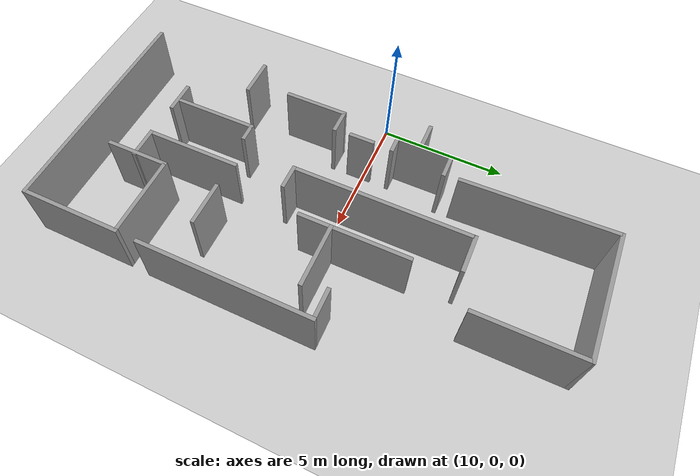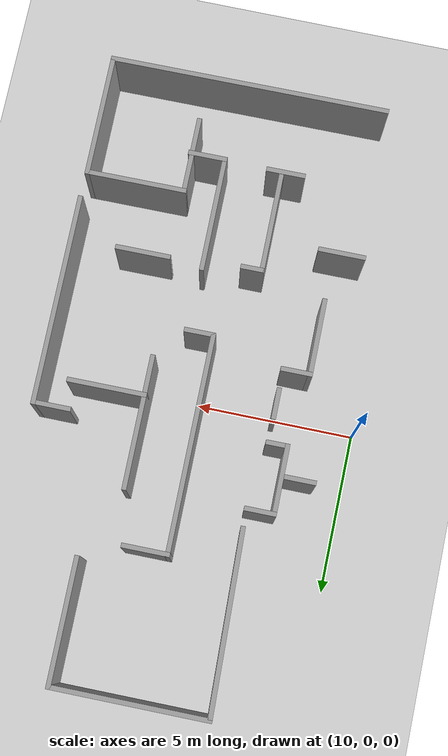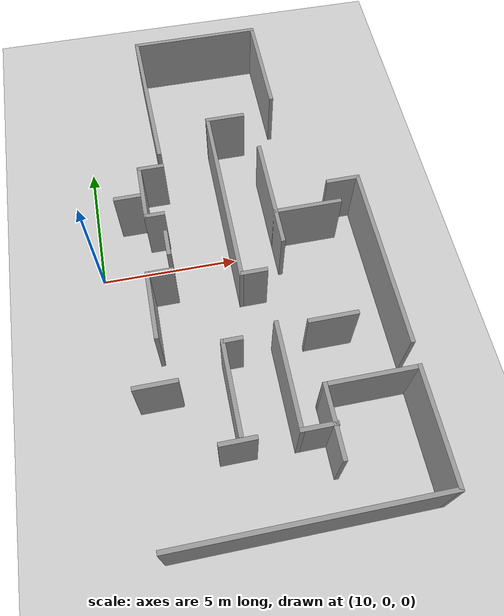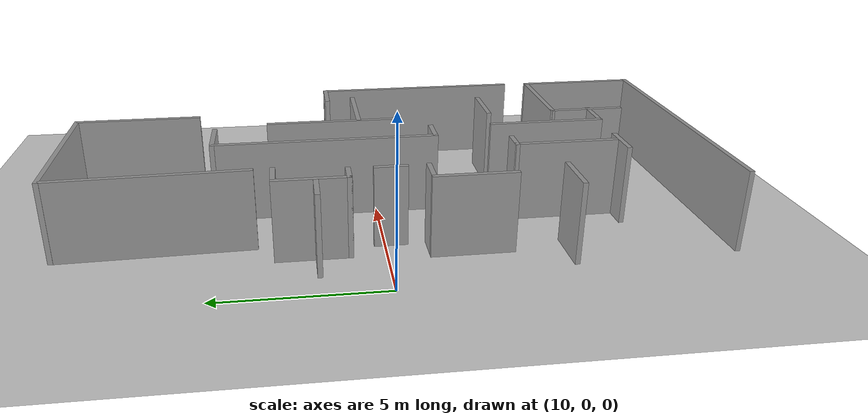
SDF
<sdf version="1.6">
 <world name="default">
  <model name="ground_plane">
   <static>1</static>
   <link name="link">
    <collision name="collision">
     <geometry><plane><normal>0 0 1</normal><size>100 100</size></plane></geometry>
     <surface><friction><ode><mu>100</mu><mu2>50</mu2></ode></friction></surface>
    </collision>
    <visual name="visual">
     <cast_shadows>0</cast_shadows>
     <geometry><plane><normal>0 0 1</normal><size>100 100</size></plane></geometry>
     <material>
      <script><uri>file://media/materials/scripts/gazebo.material</uri><name>Gazebo/Grey</name></script>
     </material>
    </visual>
   </link>
  </model>
  <model name="darpa_maze_real">
   <link name="Wall_154">
    <pose>-6.85816 3.28111 0 0 0 -3.11462</pose>
    <inertial>
     <inertia><ixx>0</ixx><ixy>0</ixy><ixz>0</ixz><iyy>0</iyy><iyz>0</iyz><izz>0</izz></inertia>
     <mass>0</mass>
    </inertial>
    <visual name="Wall_154_Visual">
     <pose>0 0 1.25 0 -0 0</pose>
     <geometry><box><size>5.75605 0.15 2.5</size></box></geometry>
     <material>
      <script><uri>file://media/materials/scripts/gazebo.material</uri><name>Gazebo/Grey</name></script>
      <ambient>1 1 1 1</ambient>
     </material>
     <meta><layer>0</layer></meta>
    </visual>
    <collision name="Wall_154_Collision">
     <pose>0 0 1.25 0 -0 0</pose>
     <geometry><box><size>5.75605 0.15 2.5</size></box></geometry>
     <surface>
      <friction>
       <ode><mu>1</mu><mu2>1</mu2><fdir1>0 0 0</fdir1><slip1>0</slip1><slip2>0</slip2></ode>
       <torsional>
        <coefficient>1</coefficient>
        <patch_radius>0</patch_radius>
        <surface_radius>0</surface_radius>
        <use_patch_radius>1</use_patch_radius>
        <ode><slip>0</slip></ode>
       </torsional>
      </friction>
      <bounce><restitution_coefficient>0</restitution_coefficient><threshold>1e+06</threshold></bounce>
      <contact>
       <collide_without_contact>0</collide_without_contact>
       <collide_without_contact_bitmask>1</collide_without_contact_bitmask>
       <collide_bitmask>1</collide_bitmask>
       <ode>
        <soft_cfm>0</soft_cfm>
        <soft_erp>0.2</soft_erp>
        <kp>1e+13</kp>
        <kd>1</kd>
        <max_vel>0.01</max_vel>
        <min_depth>0</min_depth>
       </ode>
       <bullet>
        <split_impulse>1</split_impulse>
        <split_impulse_penetration_threshold>-0.01</split_impulse_penetration_threshold>
        <soft_cfm>0</soft_cfm>
        <soft_erp>0.2</soft_erp>
        <kp>1e+13</kp>
        <kd>1</kd>
       </bullet>
      </contact>
     </surface>
    </collision>
   </link>
   <link name="Wall_160">
    <pose>4.9219 2.01613 0 0 -0 1.5708</pose>
    <visual name="Wall_160_Visual">
     <pose>0 0 1.25 0 -0 0</pose>
     <geometry><box><size>1.5 0.15 2.5</size></box></geometry>
     <material>
      <script><uri>file://media/materials/scripts/gazebo.material</uri><name>Gazebo/Grey</name></script>
      <ambient>1 1 1 1</ambient>
     </material>
     <meta><layer>0</layer></meta>
    </visual>
    <collision name="Wall_160_Collision">
     <pose>0 0 1.25 0 -0 0</pose>
     <geometry><box><size>1.5 0.15 2.5</size></box></geometry>
     <surface>
      <friction>
       <ode><mu>1</mu><mu2>1</mu2><fdir1>0 0 0</fdir1><slip1>0</slip1><slip2>0</slip2></ode>
       <torsional>
        <coefficient>1</coefficient>
        <patch_radius>0</patch_radius>
        <surface_radius>0</surface_radius>
        <use_patch_radius>1</use_patch_radius>
        <ode><slip>0</slip></ode>
       </torsional>
      </friction>
      <bounce><restitution_coefficient>0</restitution_coefficient><threshold>1e+06</threshold></bounce>
      <contact>
       <collide_without_contact>0</collide_without_contact>
       <collide_without_contact_bitmask>1</collide_without_contact_bitmask>
       <collide_bitmask>1</collide_bitmask>
       <ode>
        <soft_cfm>0</soft_cfm>
        <soft_erp>0.2</soft_erp>
        <kp>1e+13</kp>
        <kd>1</kd>
        <max_vel>0.01</max_vel>
        <min_depth>0</min_depth>
       </ode>
       <bullet>
        <split_impulse>1</split_impulse>
        <split_impulse_penetration_threshold>-0.01</split_impulse_penetration_threshold>
        <soft_cfm>0</soft_cfm>
        <soft_erp>0.2</soft_erp>
        <kp>1e+13</kp>
        <kd>1</kd>
       </bullet>
      </contact>
     </surface>
    </collision>
   </link>
   <link name="Wall_162">
    <pose>2.14718 2.26404 0 0 -0 3.14159</pose>
    <visual name="Wall_162_Visual">
     <pose>0 0 1.25 0 -0 0</pose>
     <geometry><box><size>2.5 0.15 2.5</size></box></geometry>
     <material>
      <script><uri>file://media/materials/scripts/gazebo.material</uri><name>Gazebo/Grey</name></script>
      <ambient>1 1 1 1</ambient>
     </material>
     <meta><layer>0</layer></meta>
    </visual>
    <collision name="Wall_162_Collision">
     <pose>0 0 1.25 0 -0 0</pose>
     <geometry><box><size>2.5 0.15 2.5</size></box></geometry>
     <surface>
      <friction>
       <ode><mu>1</mu><mu2>1</mu2><fdir1>0 0 0</fdir1><slip1>0</slip1><slip2>0</slip2></ode>
       <torsional>
        <coefficient>1</coefficient>
        <patch_radius>0</patch_radius>
        <surface_radius>0</surface_radius>
        <use_patch_radius>1</use_patch_radius>
        <ode><slip>0</slip></ode>
       </torsional>
      </friction>
      <bounce><restitution_coefficient>0</restitution_coefficient><threshold>1e+06</threshold></bounce>
      <contact>
       <collide_without_contact>0</collide_without_contact>
       <collide_without_contact_bitmask>1</collide_without_contact_bitmask>
       <collide_bitmask>1</collide_bitmask>
       <ode>
        <soft_cfm>0</soft_cfm>
        <soft_erp>0.2</soft_erp>
        <kp>1e+13</kp>
        <kd>1</kd>
        <max_vel>0.01</max_vel>
        <min_depth>0</min_depth>
       </ode>
       <bullet>
        <split_impulse>1</split_impulse>
        <split_impulse_penetration_threshold>-0.01</split_impulse_penetration_threshold>
        <soft_cfm>0</soft_cfm>
        <soft_erp>0.2</soft_erp>
        <kp>1e+13</kp>
        <kd>1</kd>
       </bullet>
      </contact>
     </surface>
    </collision>
   </link>
   <link name="Wall_163">
    <pose>0.972182 2.68905 0 0 -0 1.5708</pose>
    <visual name="Wall_163_Visual">
     <pose>0 0 1.25 0 -0 0</pose>
     <geometry><box><size>1 0.15 2.5</size></box></geometry>
     <material>
      <script><uri>file://media/materials/scripts/gazebo.material</uri><name>Gazebo/Grey</name></script>
      <ambient>1 1 1 1</ambient>
     </material>
     <meta><layer>0</layer></meta>
    </visual>
    <collision name="Wall_163_Collision">
     <pose>0 0 1.25 0 -0 0</pose>
     <geometry><box><size>1 0.15 2.5</size></box></geometry>
     <surface>
      <friction>
       <ode><mu>1</mu><mu2>1</mu2><fdir1>0 0 0</fdir1><slip1>0</slip1><slip2>0</slip2></ode>
       <torsional>
        <coefficient>1</coefficient>
        <patch_radius>0</patch_radius>
        <surface_radius>0</surface_radius>
        <use_patch_radius>1</use_patch_radius>
        <ode><slip>0</slip></ode>
       </torsional>
      </friction>
      <bounce><restitution_coefficient>0</restitution_coefficient><threshold>1e+06</threshold></bounce>
      <contact>
       <collide_without_contact>0</collide_without_contact>
       <collide_without_contact_bitmask>1</collide_without_contact_bitmask>
       <collide_bitmask>1</collide_bitmask>
       <ode>
        <soft_cfm>0</soft_cfm>
        <soft_erp>0.2</soft_erp>
        <kp>1e+13</kp>
        <kd>1</kd>
        <max_vel>0.01</max_vel>
        <min_depth>0</min_depth>
       </ode>
       <bullet>
        <split_impulse>1</split_impulse>
        <split_impulse_penetration_threshold>-0.01</split_impulse_penetration_threshold>
        <soft_cfm>0</soft_cfm>
        <soft_erp>0.2</soft_erp>
        <kp>1e+13</kp>
        <kd>1</kd>
       </bullet>
      </contact>
     </surface>
    </collision>
   </link>
   <link name="Wall_165">
    <pose>-3.44589 2.94655 0 0 0 -1.5708</pose>
    <visual name="Wall_165_Visual">
     <pose>0 0 1.25 0 -0 0</pose>
     <geometry><box><size>1 0.15 2.5</size></box></geometry>
     <material>
      <script><uri>file://media/materials/scripts/gazebo.material</uri><name>Gazebo/Grey</name></script>
      <ambient>1 1 1 1</ambient>
     </material>
     <meta><layer>0</layer></meta>
    </visual>
    <collision name="Wall_165_Collision">
     <pose>0 0 1.25 0 -0 0</pose>
     <geometry><box><size>1 0.15 2.5</size></box></geometry>
     <surface>
      <friction>
       <ode><mu>1</mu><mu2>1</mu2><fdir1>0 0 0</fdir1><slip1>0</slip1><slip2>0</slip2></ode>
       <torsional>
        <coefficient>1</coefficient>
        <patch_radius>0</patch_radius>
        <surface_radius>0</surface_radius>
        <use_patch_radius>1</use_patch_radius>
        <ode><slip>0</slip></ode>
       </torsional>
      </friction>
      <bounce><restitution_coefficient>0</restitution_coefficient><threshold>1e+06</threshold></bounce>
      <contact>
       <collide_without_contact>0</collide_without_contact>
       <collide_without_contact_bitmask>1</collide_without_contact_bitmask>
       <collide_bitmask>1</collide_bitmask>
       <ode>
        <soft_cfm>0</soft_cfm>
        <soft_erp>0.2</soft_erp>
        <kp>1e+13</kp>
        <kd>1</kd>
        <max_vel>0.01</max_vel>
        <min_depth>0</min_depth>
       </ode>
       <bullet>
        <split_impulse>1</split_impulse>
        <split_impulse_penetration_threshold>-0.01</split_impulse_penetration_threshold>
        <soft_cfm>0</soft_cfm>
        <soft_erp>0.2</soft_erp>
        <kp>1e+13</kp>
        <kd>1</kd>
       </bullet>
      </contact>
     </surface>
    </collision>
   </link>
   <link name="Wall_166">
    <pose>-2.39589 2.52155 0 0 -0 0</pose>
    <visual name="Wall_166_Visual">
     <pose>0 0 1.25 0 -0 0</pose>
     <geometry><box><size>2.25 0.15 2.5</size></box></geometry>
     <material>
      <script><uri>file://media/materials/scripts/gazebo.material</uri><name>Gazebo/Grey</name></script>
      <ambient>1 1 1 1</ambient>
     </material>
     <meta><layer>0</layer></meta>
    </visual>
    <collision name="Wall_166_Collision">
     <pose>0 0 1.25 0 -0 0</pose>
     <geometry><box><size>2.25 0.15 2.5</size></box></geometry>
     <surface>
      <friction>
       <ode><mu>1</mu><mu2>1</mu2><fdir1>0 0 0</fdir1><slip1>0</slip1><slip2>0</slip2></ode>
       <torsional>
        <coefficient>1</coefficient>
        <patch_radius>0</patch_radius>
        <surface_radius>0</surface_radius>
        <use_patch_radius>1</use_patch_radius>
        <ode><slip>0</slip></ode>
       </torsional>
      </friction>
      <bounce><restitution_coefficient>0</restitution_coefficient><threshold>1e+06</threshold></bounce>
      <contact>
       <collide_without_contact>0</collide_without_contact>
       <collide_without_contact_bitmask>1</collide_without_contact_bitmask>
       <collide_bitmask>1</collide_bitmask>
       <ode>
        <soft_cfm>0</soft_cfm>
        <soft_erp>0.2</soft_erp>
        <kp>1e+13</kp>
        <kd>1</kd>
        <max_vel>0.01</max_vel>
        <min_depth>0</min_depth>
       </ode>
       <bullet>
        <split_impulse>1</split_impulse>
        <split_impulse_penetration_threshold>-0.01</split_impulse_penetration_threshold>
        <soft_cfm>0</soft_cfm>
        <soft_erp>0.2</soft_erp>
        <kp>1e+13</kp>
        <kd>1</kd>
       </bullet>
      </contact>
     </surface>
    </collision>
   </link>
   <link name="Wall_167">
    <pose>-1.34589 2.82155 0 0 -0 1.5708</pose>
    <visual name="Wall_167_Visual">
     <pose>0 0 1.25 0 -0 0</pose>
     <geometry><box><size>0.75 0.15 2.5</size></box></geometry>
     <material>
      <script><uri>file://media/materials/scripts/gazebo.material</uri><name>Gazebo/Grey</name></script>
      <ambient>1 1 1 1</ambient>
     </material>
     <meta><layer>0</layer></meta>
    </visual>
    <collision name="Wall_167_Collision">
     <pose>0 0 1.25 0 -0 0</pose>
     <geometry><box><size>0.75 0.15 2.5</size></box></geometry>
     <surface>
      <friction>
       <ode><mu>1</mu><mu2>1</mu2><fdir1>0 0 0</fdir1><slip1>0</slip1><slip2>0</slip2></ode>
       <torsional>
        <coefficient>1</coefficient>
        <patch_radius>0</patch_radius>
        <surface_radius>0</surface_radius>
        <use_patch_radius>1</use_patch_radius>
        <ode><slip>0</slip></ode>
       </torsional>
      </friction>
      <bounce><restitution_coefficient>0</restitution_coefficient><threshold>1e+06</threshold></bounce>
      <contact>
       <collide_without_contact>0</collide_without_contact>
       <collide_without_contact_bitmask>1</collide_without_contact_bitmask>
       <collide_bitmask>1</collide_bitmask>
       <ode>
        <soft_cfm>0</soft_cfm>
        <soft_erp>0.2</soft_erp>
        <kp>1e+13</kp>
        <kd>1</kd>
        <max_vel>0.01</max_vel>
        <min_depth>0</min_depth>
       </ode>
       <bullet>
        <split_impulse>1</split_impulse>
        <split_impulse_penetration_threshold>-0.01</split_impulse_penetration_threshold>
        <soft_cfm>0</soft_cfm>
        <soft_erp>0.2</soft_erp>
        <kp>1e+13</kp>
        <kd>1</kd>
       </bullet>
      </contact>
     </surface>
    </collision>
   </link>
   <link name="Wall_169">
    <pose>-2.27686 1.95071 0 0 -0 1.5708</pose>
    <visual name="Wall_169_Visual">
     <pose>0 0 1.25 0 -0 0</pose>
     <geometry><box><size>1 0.15 2.5</size></box></geometry>
     <material>
      <script><uri>file://media/materials/scripts/gazebo.material</uri><name>Gazebo/Grey</name></script>
      <ambient>1 1 1 1</ambient>
     </material>
     <meta><layer>0</layer></meta>
    </visual>
    <collision name="Wall_169_Collision">
     <pose>0 0 1.25 0 -0 0</pose>
     <geometry><box><size>1 0.15 2.5</size></box></geometry>
     <surface>
      <friction>
       <ode><mu>1</mu><mu2>1</mu2><fdir1>0 0 0</fdir1><slip1>0</slip1><slip2>0</slip2></ode>
       <torsional>
        <coefficient>1</coefficient>
        <patch_radius>0</patch_radius>
        <surface_radius>0</surface_radius>
        <use_patch_radius>1</use_patch_radius>
        <ode><slip>0</slip></ode>
       </torsional>
      </friction>
      <bounce><restitution_coefficient>0</restitution_coefficient><threshold>1e+06</threshold></bounce>
      <contact>
       <collide_without_contact>0</collide_without_contact>
       <collide_without_contact_bitmask>1</collide_without_contact_bitmask>
       <collide_bitmask>1</collide_bitmask>
       <ode>
        <soft_cfm>0</soft_cfm>
        <soft_erp>0.2</soft_erp>
        <kp>1e+13</kp>
        <kd>1</kd>
        <max_vel>0.01</max_vel>
        <min_depth>0</min_depth>
       </ode>
       <bullet>
        <split_impulse>1</split_impulse>
        <split_impulse_penetration_threshold>-0.01</split_impulse_penetration_threshold>
        <soft_cfm>0</soft_cfm>
        <soft_erp>0.2</soft_erp>
        <kp>1e+13</kp>
        <kd>1</kd>
       </bullet>
      </contact>
     </surface>
    </collision>
   </link>
   <link name="Wall_171">
    <pose>3.8951 4.65021 0 0 0 -1.5708</pose>
    <visual name="Wall_171_Visual">
     <pose>0 0 1.25 0 -0 0</pose>
     <geometry><box><size>0.75 0.15 2.5</size></box></geometry>
     <material>
      <script><uri>file://media/materials/scripts/gazebo.material</uri><name>Gazebo/Grey</name></script>
      <ambient>1 1 1 1</ambient>
     </material>
     <meta><layer>0</layer></meta>
    </visual>
    <collision name="Wall_171_Collision">
     <pose>0 0 1.25 0 -0 0</pose>
     <geometry><box><size>0.75 0.15 2.5</size></box></geometry>
     <surface>
      <friction>
       <ode><mu>1</mu><mu2>1</mu2><fdir1>0 0 0</fdir1><slip1>0</slip1><slip2>0</slip2></ode>
       <torsional>
        <coefficient>1</coefficient>
        <patch_radius>0</patch_radius>
        <surface_radius>0</surface_radius>
        <use_patch_radius>1</use_patch_radius>
        <ode><slip>0</slip></ode>
       </torsional>
      </friction>
      <bounce><restitution_coefficient>0</restitution_coefficient><threshold>1e+06</threshold></bounce>
      <contact>
       <collide_without_contact>0</collide_without_contact>
       <collide_without_contact_bitmask>1</collide_without_contact_bitmask>
       <collide_bitmask>1</collide_bitmask>
       <ode>
        <soft_cfm>0</soft_cfm>
        <soft_erp>0.2</soft_erp>
        <kp>1e+13</kp>
        <kd>1</kd>
        <max_vel>0.01</max_vel>
        <min_depth>0</min_depth>
       </ode>
       <bullet>
        <split_impulse>1</split_impulse>
        <split_impulse_penetration_threshold>-0.01</split_impulse_penetration_threshold>
        <soft_cfm>0</soft_cfm>
        <soft_erp>0.2</soft_erp>
        <kp>1e+13</kp>
        <kd>1</kd>
       </bullet>
      </contact>
     </surface>
    </collision>
   </link>
   <link name="Wall_174">
    <pose>7.14993 4.22658 0 0 -0 1.5708</pose>
    <visual name="Wall_174_Visual">
     <pose>0 0 1.25 0 -0 0</pose>
     <geometry><box><size>1.25 0.15 2.5</size></box></geometry>
     <material>
      <script><uri>file://media/materials/scripts/gazebo.material</uri><name>Gazebo/Grey</name></script>
      <ambient>1 1 1 1</ambient>
     </material>
     <meta><layer>0</layer></meta>
    </visual>
    <collision name="Wall_174_Collision">
     <pose>0 0 1.25 0 -0 0</pose>
     <geometry><box><size>1.25 0.15 2.5</size></box></geometry>
     <surface>
      <friction>
       <ode><mu>1</mu><mu2>1</mu2><fdir1>0 0 0</fdir1><slip1>0</slip1><slip2>0</slip2></ode>
       <torsional>
        <coefficient>1</coefficient>
        <patch_radius>0</patch_radius>
        <surface_radius>0</surface_radius>
        <use_patch_radius>1</use_patch_radius>
        <ode><slip>0</slip></ode>
       </torsional>
      </friction>
      <bounce><restitution_coefficient>0</restitution_coefficient><threshold>1e+06</threshold></bounce>
      <contact>
       <collide_without_contact>0</collide_without_contact>
       <collide_without_contact_bitmask>1</collide_without_contact_bitmask>
       <collide_bitmask>1</collide_bitmask>
       <ode>
        <soft_cfm>0</soft_cfm>
        <soft_erp>0.2</soft_erp>
        <kp>1e+13</kp>
        <kd>1</kd>
        <max_vel>0.01</max_vel>
        <min_depth>0</min_depth>
       </ode>
       <bullet>
        <split_impulse>1</split_impulse>
        <split_impulse_penetration_threshold>-0.01</split_impulse_penetration_threshold>
        <soft_cfm>0</soft_cfm>
        <soft_erp>0.2</soft_erp>
        <kp>1e+13</kp>
        <kd>1</kd>
       </bullet>
      </contact>
     </surface>
    </collision>
   </link>
   <link name="Wall_176">
    <pose>5.4451 4.35021 0 0 -0 0</pose>
    <visual name="Wall_176_Visual">
     <pose>0 0 1.25 0 -0 0</pose>
     <geometry><box><size>3.25 0.15 2.5</size></box></geometry>
     <material>
      <script><uri>file://media/materials/scripts/gazebo.material</uri><name>Gazebo/Grey</name></script>
      <ambient>1 1 1 1</ambient>
     </material>
     <meta><layer>0</layer></meta>
    </visual>
    <collision name="Wall_176_Collision">
     <pose>0 0 1.25 0 -0 0</pose>
     <geometry><box><size>3.25 0.15 2.5</size></box></geometry>
     <surface>
      <friction>
       <ode><mu>1</mu><mu2>1</mu2><fdir1>0 0 0</fdir1><slip1>0</slip1><slip2>0</slip2></ode>
       <torsional>
        <coefficient>1</coefficient>
        <patch_radius>0</patch_radius>
        <surface_radius>0</surface_radius>
        <use_patch_radius>1</use_patch_radius>
        <ode><slip>0</slip></ode>
       </torsional>
      </friction>
      <bounce><restitution_coefficient>0</restitution_coefficient><threshold>1e+06</threshold></bounce>
      <contact>
       <collide_without_contact>0</collide_without_contact>
       <collide_without_contact_bitmask>1</collide_without_contact_bitmask>
       <collide_bitmask>1</collide_bitmask>
       <ode>
        <soft_cfm>0</soft_cfm>
        <soft_erp>0.2</soft_erp>
        <kp>1e+13</kp>
        <kd>1</kd>
        <max_vel>0.01</max_vel>
        <min_depth>0</min_depth>
       </ode>
       <bullet>
        <split_impulse>1</split_impulse>
        <split_impulse_penetration_threshold>-0.01</split_impulse_penetration_threshold>
        <soft_cfm>0</soft_cfm>
        <soft_erp>0.2</soft_erp>
        <kp>1e+13</kp>
        <kd>1</kd>
       </bullet>
      </contact>
     </surface>
    </collision>
   </link>
   <link name="Wall_178">
    <pose>-0.12433 3.10656 0 0 -0 4e-06</pose>
    <visual name="Wall_178_Visual">
     <pose>0 0 1.25 0 -0 0</pose>
     <geometry><box><size>1 0.15 2.5</size></box></geometry>
     <material>
      <script><uri>file://media/materials/scripts/gazebo.material</uri><name>Gazebo/Grey</name></script>
      <ambient>1 1 1 1</ambient>
     </material>
     <meta><layer>0</layer></meta>
    </visual>
    <collision name="Wall_178_Collision">
     <pose>0 0 1.25 0 -0 0</pose>
     <geometry><box><size>1 0.15 2.5</size></box></geometry>
     <surface>
      <friction>
       <ode><mu>1</mu><mu2>1</mu2><fdir1>0 0 0</fdir1><slip1>0</slip1><slip2>0</slip2></ode>
       <torsional>
        <coefficient>1</coefficient>
        <patch_radius>0</patch_radius>
        <surface_radius>0</surface_radius>
        <use_patch_radius>1</use_patch_radius>
        <ode><slip>0</slip></ode>
       </torsional>
      </friction>
      <bounce><restitution_coefficient>0</restitution_coefficient><threshold>1e+06</threshold></bounce>
      <contact>
       <collide_without_contact>0</collide_without_contact>
       <collide_without_contact_bitmask>1</collide_without_contact_bitmask>
       <collide_bitmask>1</collide_bitmask>
       <ode>
        <soft_cfm>0</soft_cfm>
        <soft_erp>0.2</soft_erp>
        <kp>1e+13</kp>
        <kd>1</kd>
        <max_vel>0.01</max_vel>
        <min_depth>0</min_depth>
       </ode>
       <bullet>
        <split_impulse>1</split_impulse>
        <split_impulse_penetration_threshold>-0.01</split_impulse_penetration_threshold>
        <soft_cfm>0</soft_cfm>
        <soft_erp>0.2</soft_erp>
        <kp>1e+13</kp>
        <kd>1</kd>
       </bullet>
      </contact>
     </surface>
    </collision>
   </link>
   <link name="Wall_188">
    <pose>9.78261 5.91805 0 0 -0 1.5708</pose>
    <visual name="Wall_188_Visual">
     <pose>0 0 1.25 0 -0 0</pose>
     <geometry><box><size>9 0.15 2.5</size></box></geometry>
     <material>
      <script><uri>file://media/materials/scripts/gazebo.material</uri><name>Gazebo/Grey</name></script>
      <ambient>1 1 1 1</ambient>
     </material>
     <meta><layer>0</layer></meta>
    </visual>
    <collision name="Wall_188_Collision">
     <pose>0 0 1.25 0 -0 0</pose>
     <geometry><box><size>9 0.15 2.5</size></box></geometry>
     <surface>
      <friction>
       <ode><mu>1</mu><mu2>1</mu2><fdir1>0 0 0</fdir1><slip1>0</slip1><slip2>0</slip2></ode>
       <torsional>
        <coefficient>1</coefficient>
        <patch_radius>0</patch_radius>
        <surface_radius>0</surface_radius>
        <use_patch_radius>1</use_patch_radius>
        <ode><slip>0</slip></ode>
       </torsional>
      </friction>
      <bounce><restitution_coefficient>0</restitution_coefficient><threshold>1e+06</threshold></bounce>
      <contact>
       <collide_without_contact>0</collide_without_contact>
       <collide_without_contact_bitmask>1</collide_without_contact_bitmask>
       <collide_bitmask>1</collide_bitmask>
       <ode>
        <soft_cfm>0</soft_cfm>
        <soft_erp>0.2</soft_erp>
        <kp>1e+13</kp>
        <kd>1</kd>
        <max_vel>0.01</max_vel>
        <min_depth>0</min_depth>
       </ode>
       <bullet>
        <split_impulse>1</split_impulse>
        <split_impulse_penetration_threshold>-0.01</split_impulse_penetration_threshold>
        <soft_cfm>0</soft_cfm>
        <soft_erp>0.2</soft_erp>
        <kp>1e+13</kp>
        <kd>1</kd>
       </bullet>
      </contact>
     </surface>
    </collision>
   </link>
   <link name="Wall_189">
    <pose>7.85761 10.3431 0 0 -0 3.14159</pose>
    <visual name="Wall_189_Visual">
     <pose>0 0 1.25 0 -0 0</pose>
     <geometry><box><size>4 0.15 2.5</size></box></geometry>
     <material>
      <script><uri>file://media/materials/scripts/gazebo.material</uri><name>Gazebo/Grey</name></script>
      <ambient>1 1 1 1</ambient>
     </material>
     <meta><layer>0</layer></meta>
    </visual>
    <collision name="Wall_189_Collision">
     <pose>0 0 1.25 0 -0 0</pose>
     <geometry><box><size>4 0.15 2.5</size></box></geometry>
     <surface>
      <friction>
       <ode><mu>1</mu><mu2>1</mu2><fdir1>0 0 0</fdir1><slip1>0</slip1><slip2>0</slip2></ode>
       <torsional>
        <coefficient>1</coefficient>
        <patch_radius>0</patch_radius>
        <surface_radius>0</surface_radius>
        <use_patch_radius>1</use_patch_radius>
        <ode><slip>0</slip></ode>
       </torsional>
      </friction>
      <bounce><restitution_coefficient>0</restitution_coefficient><threshold>1e+06</threshold></bounce>
      <contact>
       <collide_without_contact>0</collide_without_contact>
       <collide_without_contact_bitmask>1</collide_without_contact_bitmask>
       <collide_bitmask>1</collide_bitmask>
       <ode>
        <soft_cfm>0</soft_cfm>
        <soft_erp>0.2</soft_erp>
        <kp>1e+13</kp>
        <kd>1</kd>
        <max_vel>0.01</max_vel>
        <min_depth>0</min_depth>
       </ode>
       <bullet>
        <split_impulse>1</split_impulse>
        <split_impulse_penetration_threshold>-0.01</split_impulse_penetration_threshold>
        <soft_cfm>0</soft_cfm>
        <soft_erp>0.2</soft_erp>
        <kp>1e+13</kp>
        <kd>1</kd>
       </bullet>
      </contact>
     </surface>
    </collision>
   </link>
   <link name="Wall_192">
    <pose>5.93261 8.79305 0 0 0 -1.5708</pose>
    <visual name="Wall_192_Visual">
     <pose>0 0 1.25 0 -0 0</pose>
     <geometry><box><size>3.25 0.15 2.5</size></box></geometry>
     <material>
      <script><uri>file://media/materials/scripts/gazebo.material</uri><name>Gazebo/Grey</name></script>
      <ambient>1 1 1 1</ambient>
     </material>
     <meta><layer>0</layer></meta>
    </visual>
    <collision name="Wall_192_Collision">
     <pose>0 0 1.25 0 -0 0</pose>
     <geometry><box><size>3.25 0.15 2.5</size></box></geometry>
     <surface>
      <friction>
       <ode><mu>1</mu><mu2>1</mu2><fdir1>0 0 0</fdir1><slip1>0</slip1><slip2>0</slip2></ode>
       <torsional>
        <coefficient>1</coefficient>
        <patch_radius>0</patch_radius>
        <surface_radius>0</surface_radius>
        <use_patch_radius>1</use_patch_radius>
        <ode><slip>0</slip></ode>
       </torsional>
      </friction>
      <bounce><restitution_coefficient>0</restitution_coefficient><threshold>1e+06</threshold></bounce>
      <contact>
       <collide_without_contact>0</collide_without_contact>
       <collide_without_contact_bitmask>1</collide_without_contact_bitmask>
       <collide_bitmask>1</collide_bitmask>
       <ode>
        <soft_cfm>0</soft_cfm>
        <soft_erp>0.2</soft_erp>
        <kp>1e+13</kp>
        <kd>1</kd>
        <max_vel>0.01</max_vel>
        <min_depth>0</min_depth>
       </ode>
       <bullet>
        <split_impulse>1</split_impulse>
        <split_impulse_penetration_threshold>-0.01</split_impulse_penetration_threshold>
        <soft_cfm>0</soft_cfm>
        <soft_erp>0.2</soft_erp>
        <kp>1e+13</kp>
        <kd>1</kd>
       </bullet>
      </contact>
     </surface>
    </collision>
   </link>
   <link name="Wall_193">
    <pose>7.10761 7.24305 0 0 -0 0</pose>
    <visual name="Wall_193_Visual">
     <pose>0 0 1.25 0 -0 0</pose>
     <geometry><box><size>2.5 0.15 2.5</size></box></geometry>
     <material>
      <script><uri>file://media/materials/scripts/gazebo.material</uri><name>Gazebo/Grey</name></script>
      <ambient>1 1 1 1</ambient>
     </material>
     <meta><layer>0</layer></meta>
    </visual>
    <collision name="Wall_193_Collision">
     <pose>0 0 1.25 0 -0 0</pose>
     <geometry><box><size>2.5 0.15 2.5</size></box></geometry>
     <surface>
      <friction>
       <ode><mu>1</mu><mu2>1</mu2><fdir1>0 0 0</fdir1><slip1>0</slip1><slip2>0</slip2></ode>
       <torsional>
        <coefficient>1</coefficient>
        <patch_radius>0</patch_radius>
        <surface_radius>0</surface_radius>
        <use_patch_radius>1</use_patch_radius>
        <ode><slip>0</slip></ode>
       </torsional>
      </friction>
      <bounce><restitution_coefficient>0</restitution_coefficient><threshold>1e+06</threshold></bounce>
      <contact>
       <collide_without_contact>0</collide_without_contact>
       <collide_without_contact_bitmask>1</collide_without_contact_bitmask>
       <collide_bitmask>1</collide_bitmask>
       <ode>
        <soft_cfm>0</soft_cfm>
        <soft_erp>0.2</soft_erp>
        <kp>1e+13</kp>
        <kd>1</kd>
        <max_vel>0.01</max_vel>
        <min_depth>0</min_depth>
       </ode>
       <bullet>
        <split_impulse>1</split_impulse>
        <split_impulse_penetration_threshold>-0.01</split_impulse_penetration_threshold>
        <soft_cfm>0</soft_cfm>
        <soft_erp>0.2</soft_erp>
        <kp>1e+13</kp>
        <kd>1</kd>
       </bullet>
      </contact>
     </surface>
    </collision>
   </link>
   <link name="Wall_195">
    <pose>7.19616 6.74098 0 0 0 -1.5708</pose>
    <visual name="Wall_195_Visual">
     <pose>0 0 1.25 0 -0 0</pose>
     <geometry><box><size>1.25 0.15 2.5</size></box></geometry>
     <material>
      <script><uri>file://media/materials/scripts/gazebo.material</uri><name>Gazebo/Grey</name></script>
      <ambient>1 1 1 1</ambient>
     </material>
     <meta><layer>0</layer></meta>
    </visual>
    <collision name="Wall_195_Collision">
     <pose>0 0 1.25 0 -0 0</pose>
     <geometry><box><size>1.25 0.15 2.5</size></box></geometry>
     <surface>
      <friction>
       <ode><mu>1</mu><mu2>1</mu2><fdir1>0 0 0</fdir1><slip1>0</slip1><slip2>0</slip2></ode>
       <torsional>
        <coefficient>1</coefficient>
        <patch_radius>0</patch_radius>
        <surface_radius>0</surface_radius>
        <use_patch_radius>1</use_patch_radius>
        <ode><slip>0</slip></ode>
       </torsional>
      </friction>
      <bounce><restitution_coefficient>0</restitution_coefficient><threshold>1e+06</threshold></bounce>
      <contact>
       <collide_without_contact>0</collide_without_contact>
       <collide_without_contact_bitmask>1</collide_without_contact_bitmask>
       <collide_bitmask>1</collide_bitmask>
       <ode>
        <soft_cfm>0</soft_cfm>
        <soft_erp>0.2</soft_erp>
        <kp>1e+13</kp>
        <kd>1</kd>
        <max_vel>0.01</max_vel>
        <min_depth>0</min_depth>
       </ode>
       <bullet>
        <split_impulse>1</split_impulse>
        <split_impulse_penetration_threshold>-0.01</split_impulse_penetration_threshold>
        <soft_cfm>0</soft_cfm>
        <soft_erp>0.2</soft_erp>
        <kp>1e+13</kp>
        <kd>1</kd>
       </bullet>
      </contact>
     </surface>
    </collision>
   </link>
   <link name="Wall_196">
    <pose>5.39616 6.19098 0 0 -0 3.14159</pose>
    <visual name="Wall_196_Visual">
     <pose>0 0 1.25 0 -0 0</pose>
     <geometry><box><size>3.75 0.15 2.5</size></box></geometry>
     <material>
      <script><uri>file://media/materials/scripts/gazebo.material</uri><name>Gazebo/Grey</name></script>
      <ambient>1 1 1 1</ambient>
     </material>
     <meta><layer>0</layer></meta>
    </visual>
    <collision name="Wall_196_Collision">
     <pose>0 0 1.25 0 -0 0</pose>
     <geometry><box><size>3.75 0.15 2.5</size></box></geometry>
     <surface>
      <friction>
       <ode><mu>1</mu><mu2>1</mu2><fdir1>0 0 0</fdir1><slip1>0</slip1><slip2>0</slip2></ode>
       <torsional>
        <coefficient>1</coefficient>
        <patch_radius>0</patch_radius>
        <surface_radius>0</surface_radius>
        <use_patch_radius>1</use_patch_radius>
        <ode><slip>0</slip></ode>
       </torsional>
      </friction>
      <bounce><restitution_coefficient>0</restitution_coefficient><threshold>1e+06</threshold></bounce>
      <contact>
       <collide_without_contact>0</collide_without_contact>
       <collide_without_contact_bitmask>1</collide_without_contact_bitmask>
       <collide_bitmask>1</collide_bitmask>
       <ode>
        <soft_cfm>0</soft_cfm>
        <soft_erp>0.2</soft_erp>
        <kp>1e+13</kp>
        <kd>1</kd>
        <max_vel>0.01</max_vel>
        <min_depth>0</min_depth>
       </ode>
       <bullet>
        <split_impulse>1</split_impulse>
        <split_impulse_penetration_threshold>-0.01</split_impulse_penetration_threshold>
        <soft_cfm>0</soft_cfm>
        <soft_erp>0.2</soft_erp>
        <kp>1e+13</kp>
        <kd>1</kd>
       </bullet>
      </contact>
     </surface>
    </collision>
   </link>
   <link name="Wall_198">
    <pose>3.73384 8.09098 0 0 -0 1.5708</pose>
    <visual name="Wall_198_Visual">
     <pose>0 0 1.25 0 -0 0</pose>
     <geometry><box><size>1.75 0.15 2.5</size></box></geometry>
     <material>
      <script><uri>file://media/materials/scripts/gazebo.material</uri><name>Gazebo/Grey</name></script>
      <ambient>1 1 1 1</ambient>
     </material>
     <meta><layer>0</layer></meta>
    </visual>
    <collision name="Wall_198_Collision">
     <pose>0 0 1.25 0 -0 0</pose>
     <geometry><box><size>1.75 0.15 2.5</size></box></geometry>
     <surface>
      <friction>
       <ode><mu>1</mu><mu2>1</mu2><fdir1>0 0 0</fdir1><slip1>0</slip1><slip2>0</slip2></ode>
       <torsional>
        <coefficient>1</coefficient>
        <patch_radius>0</patch_radius>
        <surface_radius>0</surface_radius>
        <use_patch_radius>1</use_patch_radius>
        <ode><slip>0</slip></ode>
       </torsional>
      </friction>
      <bounce><restitution_coefficient>0</restitution_coefficient><threshold>1e+06</threshold></bounce>
      <contact>
       <collide_without_contact>0</collide_without_contact>
       <collide_without_contact_bitmask>1</collide_without_contact_bitmask>
       <collide_bitmask>1</collide_bitmask>
       <ode>
        <soft_cfm>0</soft_cfm>
        <soft_erp>0.2</soft_erp>
        <kp>1e+13</kp>
        <kd>1</kd>
        <max_vel>0.01</max_vel>
        <min_depth>0</min_depth>
       </ode>
       <bullet>
        <split_impulse>1</split_impulse>
        <split_impulse_penetration_threshold>-0.01</split_impulse_penetration_threshold>
        <soft_cfm>0</soft_cfm>
        <soft_erp>0.2</soft_erp>
        <kp>1e+13</kp>
        <kd>1</kd>
       </bullet>
      </contact>
     </surface>
    </collision>
   </link>
   <link name="Wall_201">
    <pose>1.58158 5.83664 0 0 0 -1.5708</pose>
    <visual name="Wall_201_Visual">
     <pose>0 0 1.25 0 -0 0</pose>
     <geometry><box><size>1 0.15 2.5</size></box></geometry>
     <material>
      <script><uri>file://media/materials/scripts/gazebo.material</uri><name>Gazebo/Grey</name></script>
      <ambient>1 1 1 1</ambient>
     </material>
     <meta><layer>0</layer></meta>
    </visual>
    <collision name="Wall_201_Collision">
     <pose>0 0 1.25 0 -0 0</pose>
     <geometry><box><size>1 0.15 2.5</size></box></geometry>
     <surface>
      <friction>
       <ode><mu>1</mu><mu2>1</mu2><fdir1>0 0 0</fdir1><slip1>0</slip1><slip2>0</slip2></ode>
       <torsional>
        <coefficient>1</coefficient>
        <patch_radius>0</patch_radius>
        <surface_radius>0</surface_radius>
        <use_patch_radius>1</use_patch_radius>
        <ode><slip>0</slip></ode>
       </torsional>
      </friction>
      <bounce><restitution_coefficient>0</restitution_coefficient><threshold>1e+06</threshold></bounce>
      <contact>
       <collide_without_contact>0</collide_without_contact>
       <collide_without_contact_bitmask>1</collide_without_contact_bitmask>
       <collide_bitmask>1</collide_bitmask>
       <ode>
        <soft_cfm>0</soft_cfm>
        <soft_erp>0.2</soft_erp>
        <kp>1e+13</kp>
        <kd>1</kd>
        <max_vel>0.01</max_vel>
        <min_depth>0</min_depth>
       </ode>
       <bullet>
        <split_impulse>1</split_impulse>
        <split_impulse_penetration_threshold>-0.01</split_impulse_penetration_threshold>
        <soft_cfm>0</soft_cfm>
        <soft_erp>0.2</soft_erp>
        <kp>1e+13</kp>
        <kd>1</kd>
       </bullet>
      </contact>
     </surface>
    </collision>
   </link>
   <link name="Wall_202">
    <pose>-1.84342 5.41164 0 0 -0 3.14159</pose>
    <visual name="Wall_202_Visual">
     <pose>0 0 1.25 0 -0 0</pose>
     <geometry><box><size>7 0.15 2.5</size></box></geometry>
     <material>
      <script><uri>file://media/materials/scripts/gazebo.material</uri><name>Gazebo/Grey</name></script>
      <ambient>1 1 1 1</ambient>
     </material>
     <meta><layer>0</layer></meta>
    </visual>
    <collision name="Wall_202_Collision">
     <pose>0 0 1.25 0 -0 0</pose>
     <geometry><box><size>7 0.15 2.5</size></box></geometry>
     <surface>
      <friction>
       <ode><mu>1</mu><mu2>1</mu2><fdir1>0 0 0</fdir1><slip1>0</slip1><slip2>0</slip2></ode>
       <torsional>
        <coefficient>1</coefficient>
        <patch_radius>0</patch_radius>
        <surface_radius>0</surface_radius>
        <use_patch_radius>1</use_patch_radius>
        <ode><slip>0</slip></ode>
       </torsional>
      </friction>
      <bounce><restitution_coefficient>0</restitution_coefficient><threshold>1e+06</threshold></bounce>
      <contact>
       <collide_without_contact>0</collide_without_contact>
       <collide_without_contact_bitmask>1</collide_without_contact_bitmask>
       <collide_bitmask>1</collide_bitmask>
       <ode>
        <soft_cfm>0</soft_cfm>
        <soft_erp>0.2</soft_erp>
        <kp>1e+13</kp>
        <kd>1</kd>
        <max_vel>0.01</max_vel>
        <min_depth>0</min_depth>
       </ode>
       <bullet>
        <split_impulse>1</split_impulse>
        <split_impulse_penetration_threshold>-0.01</split_impulse_penetration_threshold>
        <soft_cfm>0</soft_cfm>
        <soft_erp>0.2</soft_erp>
        <kp>1e+13</kp>
        <kd>1</kd>
       </bullet>
      </contact>
     </surface>
    </collision>
   </link>
   <link name="Wall_203">
    <pose>-5.26842 6.08664 0 0 -0 1.5708</pose>
    <visual name="Wall_203_Visual">
     <pose>0 0 1.25 0 -0 0</pose>
     <geometry><box><size>1.5 0.15 2.5</size></box></geometry>
     <material>
      <script><uri>file://media/materials/scripts/gazebo.material</uri><name>Gazebo/Grey</name></script>
      <ambient>1 1 1 1</ambient>
     </material>
     <meta><layer>0</layer></meta>
    </visual>
    <collision name="Wall_203_Collision">
     <pose>0 0 1.25 0 -0 0</pose>
     <geometry><box><size>1.5 0.15 2.5</size></box></geometry>
     <surface>
      <friction>
       <ode><mu>1</mu><mu2>1</mu2><fdir1>0 0 0</fdir1><slip1>0</slip1><slip2>0</slip2></ode>
       <torsional>
        <coefficient>1</coefficient>
        <patch_radius>0</patch_radius>
        <surface_radius>0</surface_radius>
        <use_patch_radius>1</use_patch_radius>
        <ode><slip>0</slip></ode>
       </torsional>
      </friction>
      <bounce><restitution_coefficient>0</restitution_coefficient><threshold>1e+06</threshold></bounce>
      <contact>
       <collide_without_contact>0</collide_without_contact>
       <collide_without_contact_bitmask>1</collide_without_contact_bitmask>
       <collide_bitmask>1</collide_bitmask>
       <ode>
        <soft_cfm>0</soft_cfm>
        <soft_erp>0.2</soft_erp>
        <kp>1e+13</kp>
        <kd>1</kd>
        <max_vel>0.01</max_vel>
        <min_depth>0</min_depth>
       </ode>
       <bullet>
        <split_impulse>1</split_impulse>
        <split_impulse_penetration_threshold>-0.01</split_impulse_penetration_threshold>
        <soft_cfm>0</soft_cfm>
        <soft_erp>0.2</soft_erp>
        <kp>1e+13</kp>
        <kd>1</kd>
       </bullet>
      </contact>
     </surface>
    </collision>
   </link>
   <link name="Wall_205">
    <pose>-1.51511 7.10382 0 0 -0 0</pose>
    <visual name="Wall_205_Visual">
     <pose>0 0 1.25 0 -0 0</pose>
     <geometry><box><size>4.25 0.15 2.5</size></box></geometry>
     <material>
      <script><uri>file://media/materials/scripts/gazebo.material</uri><name>Gazebo/Grey</name></script>
      <ambient>1 1 1 1</ambient>
     </material>
     <meta><layer>0</layer></meta>
    </visual>
    <collision name="Wall_205_Collision">
     <pose>0 0 1.25 0 -0 0</pose>
     <geometry><box><size>4.25 0.15 2.5</size></box></geometry>
     <surface>
      <friction>
       <ode><mu>1</mu><mu2>1</mu2><fdir1>0 0 0</fdir1><slip1>0</slip1><slip2>0</slip2></ode>
       <torsional>
        <coefficient>1</coefficient>
        <patch_radius>0</patch_radius>
        <surface_radius>0</surface_radius>
        <use_patch_radius>1</use_patch_radius>
        <ode><slip>0</slip></ode>
       </torsional>
      </friction>
      <bounce><restitution_coefficient>0</restitution_coefficient><threshold>1e+06</threshold></bounce>
      <contact>
       <collide_without_contact>0</collide_without_contact>
       <collide_without_contact_bitmask>1</collide_without_contact_bitmask>
       <collide_bitmask>1</collide_bitmask>
       <ode>
        <soft_cfm>0</soft_cfm>
        <soft_erp>0.2</soft_erp>
        <kp>1e+13</kp>
        <kd>1</kd>
        <max_vel>0.01</max_vel>
        <min_depth>0</min_depth>
       </ode>
       <bullet>
        <split_impulse>1</split_impulse>
        <split_impulse_penetration_threshold>-0.01</split_impulse_penetration_threshold>
        <soft_cfm>0</soft_cfm>
        <soft_erp>0.2</soft_erp>
        <kp>1e+13</kp>
        <kd>1</kd>
       </bullet>
      </contact>
     </surface>
    </collision>
   </link>
   <link name="Wall_207">
    <pose>-0.664245 8.27882 0 0 -0 1.5708</pose>
    <visual name="Wall_207_Visual">
     <pose>0 0 1.25 0 -0 0</pose>
     <geometry><box><size>2.5 0.15 2.5</size></box></geometry>
     <material>
      <script><uri>file://media/materials/scripts/gazebo.material</uri><name>Gazebo/Grey</name></script>
      <ambient>1 1 1 1</ambient>
     </material>
     <meta><layer>0</layer></meta>
    </visual>
    <collision name="Wall_207_Collision">
     <pose>0 0 1.25 0 -0 0</pose>
     <geometry><box><size>2.5 0.15 2.5</size></box></geometry>
     <surface>
      <friction>
       <ode><mu>1</mu><mu2>1</mu2><fdir1>0 0 0</fdir1><slip1>0</slip1><slip2>0</slip2></ode>
       <torsional>
        <coefficient>1</coefficient>
        <patch_radius>0</patch_radius>
        <surface_radius>0</surface_radius>
        <use_patch_radius>1</use_patch_radius>
        <ode><slip>0</slip></ode>
       </torsional>
      </friction>
      <bounce><restitution_coefficient>0</restitution_coefficient><threshold>1e+06</threshold></bounce>
      <contact>
       <collide_without_contact>0</collide_without_contact>
       <collide_without_contact_bitmask>1</collide_without_contact_bitmask>
       <collide_bitmask>1</collide_bitmask>
       <ode>
        <soft_cfm>0</soft_cfm>
        <soft_erp>0.2</soft_erp>
        <kp>1e+13</kp>
        <kd>1</kd>
        <max_vel>0.01</max_vel>
        <min_depth>0</min_depth>
       </ode>
       <bullet>
        <split_impulse>1</split_impulse>
        <split_impulse_penetration_threshold>-0.01</split_impulse_penetration_threshold>
        <soft_cfm>0</soft_cfm>
        <soft_erp>0.2</soft_erp>
        <kp>1e+13</kp>
        <kd>1</kd>
       </bullet>
      </contact>
     </surface>
    </collision>
   </link>
   <link name="Wall_209">
    <pose>1.7439 10.379 0 0 -0 3.14159</pose>
    <visual name="Wall_209_Visual">
     <pose>0 0 1.25 0 -0 0</pose>
     <geometry><box><size>6.75 0.15 2.5</size></box></geometry>
     <material>
      <script><uri>file://media/materials/scripts/gazebo.material</uri><name>Gazebo/Grey</name></script>
      <ambient>1 1 1 1</ambient>
     </material>
     <meta><layer>0</layer></meta>
    </visual>
    <collision name="Wall_209_Collision">
     <pose>0 0 1.25 0 -0 0</pose>
     <geometry><box><size>6.75 0.15 2.5</size></box></geometry>
     <surface>
      <friction>
       <ode><mu>1</mu><mu2>1</mu2><fdir1>0 0 0</fdir1><slip1>0</slip1><slip2>0</slip2></ode>
       <torsional>
        <coefficient>1</coefficient>
        <patch_radius>0</patch_radius>
        <surface_radius>0</surface_radius>
        <use_patch_radius>1</use_patch_radius>
        <ode><slip>0</slip></ode>
       </torsional>
      </friction>
      <bounce><restitution_coefficient>0</restitution_coefficient><threshold>1e+06</threshold></bounce>
      <contact>
       <collide_without_contact>0</collide_without_contact>
       <collide_without_contact_bitmask>1</collide_without_contact_bitmask>
       <collide_bitmask>1</collide_bitmask>
       <ode>
        <soft_cfm>0</soft_cfm>
        <soft_erp>0.2</soft_erp>
        <kp>1e+13</kp>
        <kd>1</kd>
        <max_vel>0.01</max_vel>
        <min_depth>0</min_depth>
       </ode>
       <bullet>
        <split_impulse>1</split_impulse>
        <split_impulse_penetration_threshold>-0.01</split_impulse_penetration_threshold>
        <soft_cfm>0</soft_cfm>
        <soft_erp>0.2</soft_erp>
        <kp>1e+13</kp>
        <kd>1</kd>
       </bullet>
      </contact>
     </surface>
    </collision>
   </link>
   <link name="Wall_210">
    <pose>-1.5561 9.82899 0 0 0 -1.5708</pose>
    <visual name="Wall_210_Visual">
     <pose>0 0 1.25 0 -0 0</pose>
     <geometry><box><size>1.25 0.15 2.5</size></box></geometry>
     <material>
      <script><uri>file://media/materials/scripts/gazebo.material</uri><name>Gazebo/Grey</name></script>
      <ambient>1 1 1 1</ambient>
     </material>
     <meta><layer>0</layer></meta>
    </visual>
    <collision name="Wall_210_Collision">
     <pose>0 0 1.25 0 -0 0</pose>
     <geometry><box><size>1.25 0.15 2.5</size></box></geometry>
     <surface>
      <friction>
       <ode><mu>1</mu><mu2>1</mu2><fdir1>0 0 0</fdir1><slip1>0</slip1><slip2>0</slip2></ode>
       <torsional>
        <coefficient>1</coefficient>
        <patch_radius>0</patch_radius>
        <surface_radius>0</surface_radius>
        <use_patch_radius>1</use_patch_radius>
        <ode><slip>0</slip></ode>
       </torsional>
      </friction>
      <bounce><restitution_coefficient>0</restitution_coefficient><threshold>1e+06</threshold></bounce>
      <contact>
       <collide_without_contact>0</collide_without_contact>
       <collide_without_contact_bitmask>1</collide_without_contact_bitmask>
       <collide_bitmask>1</collide_bitmask>
       <ode>
        <soft_cfm>0</soft_cfm>
        <soft_erp>0.2</soft_erp>
        <kp>1e+13</kp>
        <kd>1</kd>
        <max_vel>0.01</max_vel>
        <min_depth>0</min_depth>
       </ode>
       <bullet>
        <split_impulse>1</split_impulse>
        <split_impulse_penetration_threshold>-0.01</split_impulse_penetration_threshold>
        <soft_cfm>0</soft_cfm>
        <soft_erp>0.2</soft_erp>
        <kp>1e+13</kp>
        <kd>1</kd>
       </bullet>
      </contact>
     </surface>
    </collision>
   </link>
   <link name="Wall_214">
    <pose>-9.75516 5.62794 0 0 -0 1.5708</pose>
    <visual name="Wall_214_Visual">
     <pose>0 0 1.25 0 -0 0</pose>
     <geometry><box><size>5 0.15 2.5</size></box></geometry>
     <material>
      <script><uri>file://media/materials/scripts/gazebo.material</uri><name>Gazebo/Grey</name></script>
      <ambient>1 1 1 1</ambient>
     </material>
     <meta><layer>0</layer></meta>
    </visual>
    <collision name="Wall_214_Collision">
     <pose>0 0 1.25 0 -0 0</pose>
     <geometry><box><size>5 0.15 2.5</size></box></geometry>
     <surface>
      <friction>
       <ode><mu>1</mu><mu2>1</mu2><fdir1>0 0 0</fdir1><slip1>0</slip1><slip2>0</slip2></ode>
       <torsional>
        <coefficient>1</coefficient>
        <patch_radius>0</patch_radius>
        <surface_radius>0</surface_radius>
        <use_patch_radius>1</use_patch_radius>
        <ode><slip>0</slip></ode>
       </torsional>
      </friction>
      <bounce><restitution_coefficient>0</restitution_coefficient><threshold>1e+06</threshold></bounce>
      <contact>
       <collide_without_contact>0</collide_without_contact>
       <collide_without_contact_bitmask>1</collide_without_contact_bitmask>
       <collide_bitmask>1</collide_bitmask>
       <ode>
        <soft_cfm>0</soft_cfm>
        <soft_erp>0.2</soft_erp>
        <kp>1e+13</kp>
        <kd>1</kd>
        <max_vel>0.01</max_vel>
        <min_depth>0</min_depth>
       </ode>
       <bullet>
        <split_impulse>1</split_impulse>
        <split_impulse_penetration_threshold>-0.01</split_impulse_penetration_threshold>
        <soft_cfm>0</soft_cfm>
        <soft_erp>0.2</soft_erp>
        <kp>1e+13</kp>
        <kd>1</kd>
       </bullet>
      </contact>
     </surface>
    </collision>
   </link>
   <link name="Wall_215">
    <pose>-7.83016 8.05294 0 0 -0 0</pose>
    <visual name="Wall_215_Visual">
     <pose>0 0 1.25 0 -0 0</pose>
     <geometry><box><size>4 0.15 2.5</size></box></geometry>
     <material>
      <script><uri>file://media/materials/scripts/gazebo.material</uri><name>Gazebo/Grey</name></script>
      <ambient>1 1 1 1</ambient>
     </material>
     <meta><layer>0</layer></meta>
    </visual>
    <collision name="Wall_215_Collision">
     <pose>0 0 1.25 0 -0 0</pose>
     <geometry><box><size>4 0.15 2.5</size></box></geometry>
     <surface>
      <friction>
       <ode><mu>1</mu><mu2>1</mu2><fdir1>0 0 0</fdir1><slip1>0</slip1><slip2>0</slip2></ode>
       <torsional>
        <coefficient>1</coefficient>
        <patch_radius>0</patch_radius>
        <surface_radius>0</surface_radius>
        <use_patch_radius>1</use_patch_radius>
        <ode><slip>0</slip></ode>
       </torsional>
      </friction>
      <bounce><restitution_coefficient>0</restitution_coefficient><threshold>1e+06</threshold></bounce>
      <contact>
       <collide_without_contact>0</collide_without_contact>
       <collide_without_contact_bitmask>1</collide_without_contact_bitmask>
       <collide_bitmask>1</collide_bitmask>
       <ode>
        <soft_cfm>0</soft_cfm>
        <soft_erp>0.2</soft_erp>
        <kp>1e+13</kp>
        <kd>1</kd>
        <max_vel>0.01</max_vel>
        <min_depth>0</min_depth>
       </ode>
       <bullet>
        <split_impulse>1</split_impulse>
        <split_impulse_penetration_threshold>-0.01</split_impulse_penetration_threshold>
        <soft_cfm>0</soft_cfm>
        <soft_erp>0.2</soft_erp>
        <kp>1e+13</kp>
        <kd>1</kd>
       </bullet>
      </contact>
     </surface>
    </collision>
   </link>
   <static>1</static>
   <pose>9.47533 -0.319632 0 0 0 -1.56507</pose>
  </model>
 </world>
</sdf>
